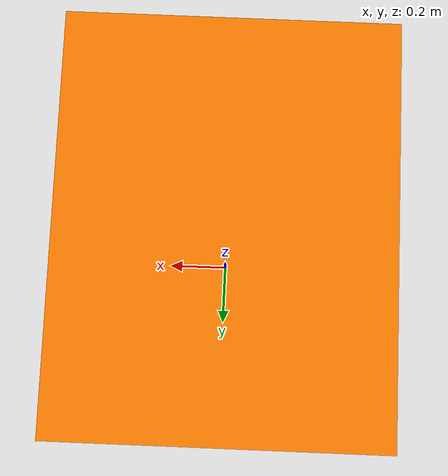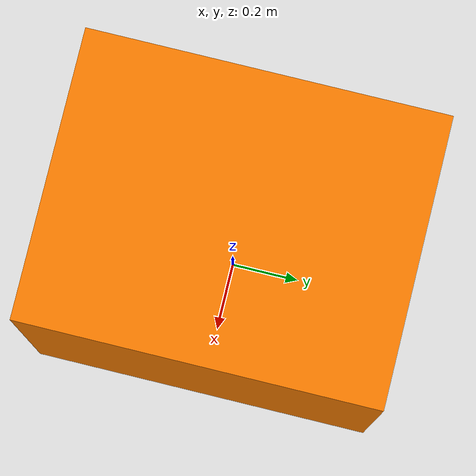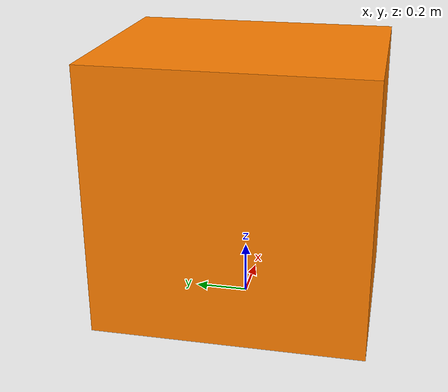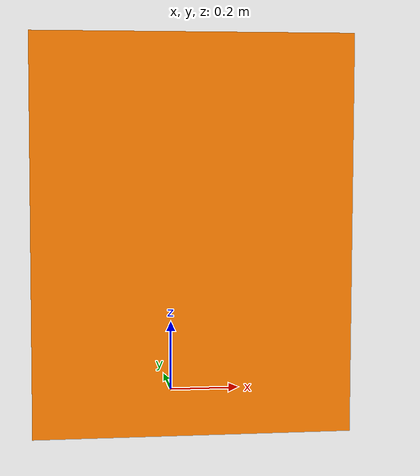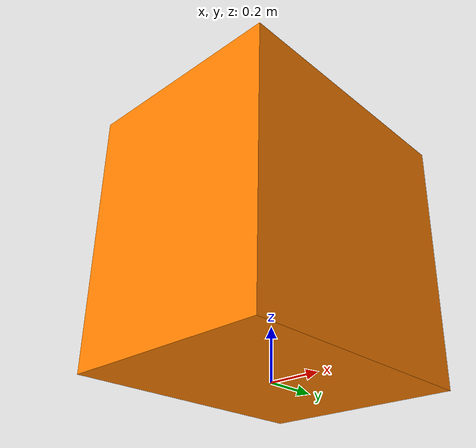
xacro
<?xml version="1.0"?>
<robot xmlns:xacro="http://ros.org/wiki/xacro" name="lift_box">
  <xacro:include filename="$(find dual_denso_arm_manipulation)/config/scene_config.xacro"/>

  <!-- Parameters (can be in scene_config.xacro too) -->
  <xacro:property name="m"  value="${lift_box_mass}"/>  <!-- mass [kg] -->
  <xacro:property name="lx" value="${lift_box_size_x}"/>
  <xacro:property name="ly" value="${lift_box_size_y}"/>
  <xacro:property name="lz" value="${lift_box_size_z}"/>

  <!-- Rigid body (free in the world; initial pose comes from spawner) -->
  <link name="lift_box">
    <!-- Correct inertia for a rectangle: Ixx = 1/12 m (ly^2 + lz^2), etc. -->
    <inertial>
      <origin xyz="0 0 0" rpy="0 0 0"/>
      <mass value="${m}"/>
      <inertia
        ixx="${(m/12.0) * (ly*ly + lz*lz)}"
        iyy="${(m/12.0) * (lx*lx + lz*lz)}"
        izz="${(m/12.0) * (lx*lx + ly*ly)}"
        ixy="0" ixz="0" iyz="0"/>
    </inertial>

    <!-- Sit on ground by raising the geometry half height -->
    <visual>
      <origin xyz="0 0 ${lz/2.0}" rpy="0 0 0"/>
      <geometry><box size="${lx} ${ly} ${lz}"/></geometry>
      <material name="orange"><color rgba="1 0.5 0 1"/></material>
    </visual>

    <collision>
      <origin xyz="0 0 ${lz/2.0}" rpy="0 0 0"/>
      <geometry><box size="${lx} ${ly} ${lz}"/></geometry>
    </collision>
  </link>

  <!-- Gazebo contact/friction parameters -->
  <gazebo reference="lift_box_collision">
    <!-- High friction so side-pinching can actually hold -->
    <mu1>1.5</mu1>
    <mu2>1.5</mu2>

    <!-- Contact stiffness/damping; tune if still jittery -->
    <kp>1e6</kp>
    <kd>1.0</kd>
    <max_contacts>50</max_contacts>
    <min_depth>0.001</min_depth>
  </gazebo>
</robot>

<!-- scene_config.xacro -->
<robot xmlns:xacro="http://www.ros.org/wiki/xacro" name="scene_config">
  <!-- Distance between the two robot bases -->
  <!-- Left arm base is at the world origin -->
  <xacro:property name="right_arm_x" value="2.0"/>

  <!-- Pose and size of additional objects -->
  <xacro:property name="lift_box_x" value="1.0"/>
  <xacro:property name="lift_box_y" value="-0.4"/>
  <xacro:property name="lift_box_z" value="0.0"/>
  <xacro:property name="lift_box_roll" value="0.0"/>
  <xacro:property name="lift_box_pitch" value="0.0"/>
  <xacro:property name="lift_box_yaw" value="0.0"/>

  <xacro:property name="lift_box_size_x" value="0.8"/>
  <xacro:property name="lift_box_size_y" value="1.0"/>
  <xacro:property name="lift_box_size_z" value="1.0"/>

  <xacro:property name="lift_box_mass" value="1.0"/>

</robot>
